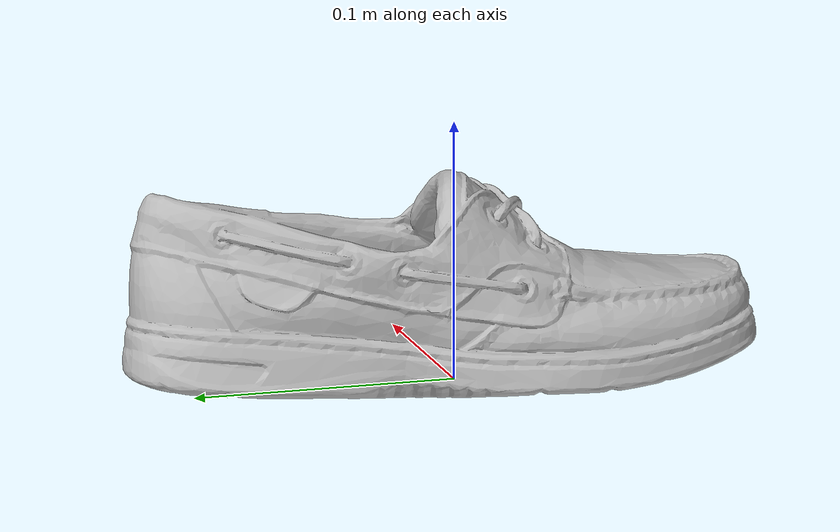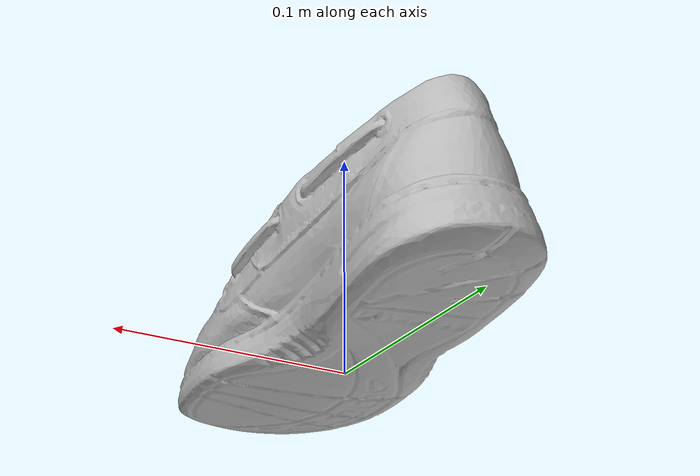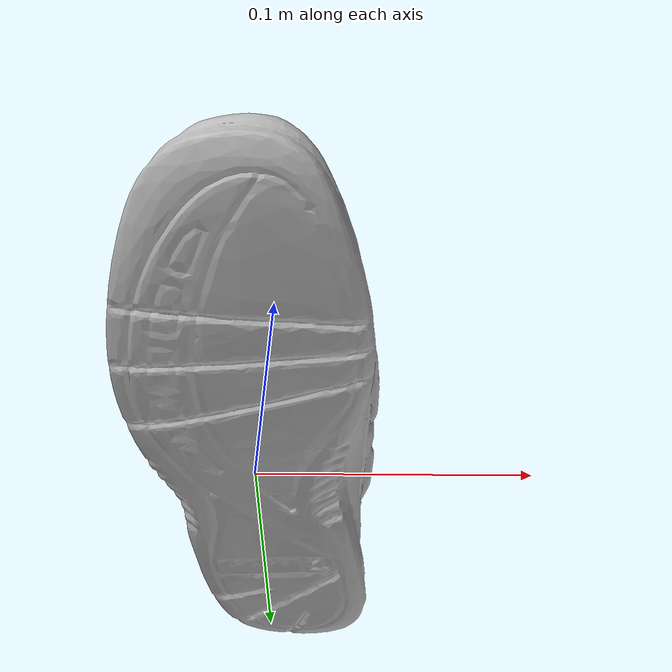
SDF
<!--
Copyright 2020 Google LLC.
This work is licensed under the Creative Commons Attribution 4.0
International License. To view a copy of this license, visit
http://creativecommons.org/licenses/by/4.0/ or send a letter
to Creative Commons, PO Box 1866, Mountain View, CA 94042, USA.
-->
<?xml version="1.0" ?>
<sdf version="1.6">
  <model name="Mens_Authentic_Original_Boat_Shoe_in_Navy_Leather_xgoEcZtRNmH">
    <link name="link_0">
      <visual name="visual">
        <geometry>
          <mesh>
            <uri>meshes/model.obj</uri>
          </mesh>
        </geometry>
      </visual>
      <collision name="collision_0">
        <geometry>
          <mesh>
            <uri>meshes/model.obj</uri>
          </mesh>
        </geometry>
      </collision>
    </link>
  </model>
</sdf>
